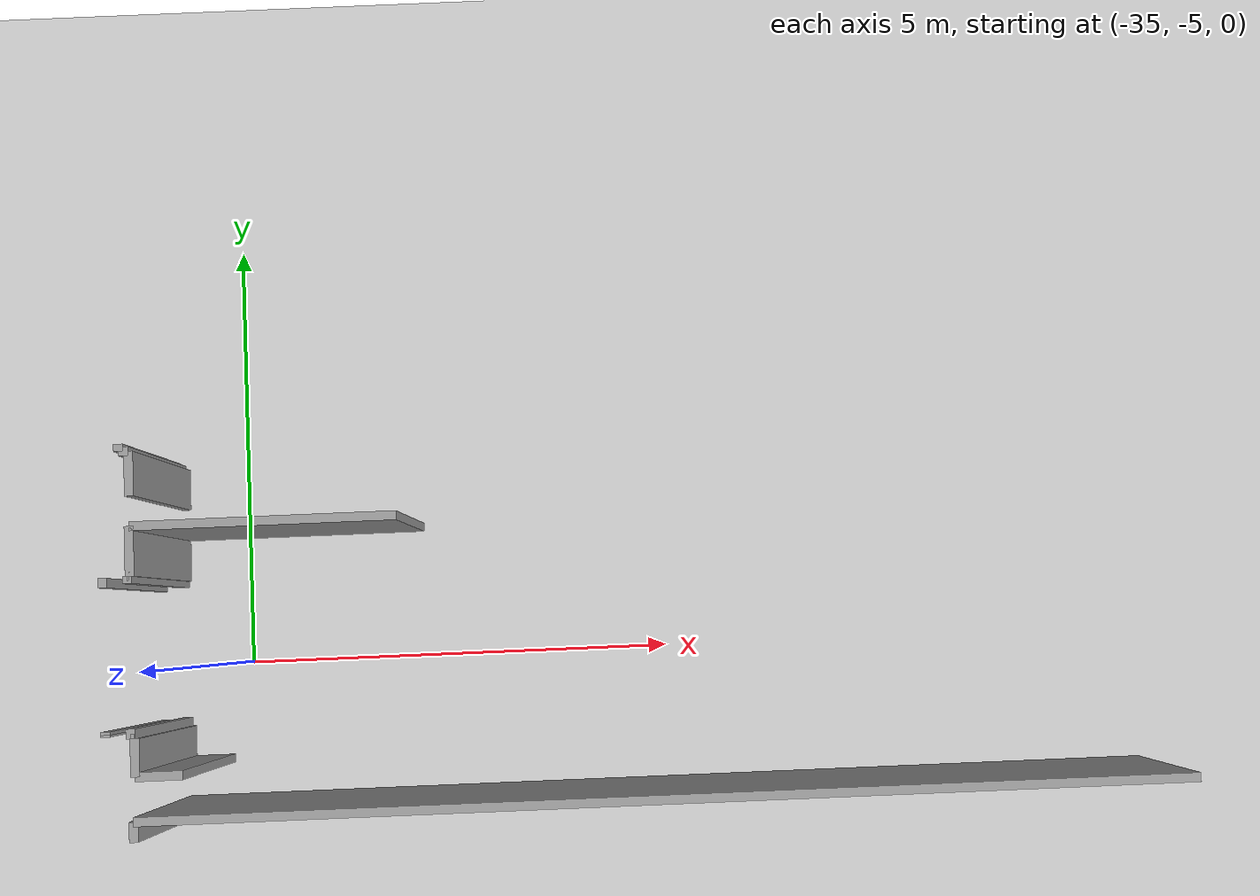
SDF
<sdf version="1.6">
 <world name="default">
  <model name="ground_plane">
   <static>1</static>
   <link name="link">
    <collision name="collision">
     <geometry><plane><normal>0 0 1</normal><size>100 100</size></plane></geometry>
     <surface><friction><ode><mu>100</mu><mu2>50</mu2></ode></friction></surface>
    </collision>
    <visual name="visual">
     <cast_shadows>0</cast_shadows>
     <geometry><plane><normal>0 0 1</normal><size>100 100</size></plane></geometry>
     <material>
      <script><uri>file://media/materials/scripts/gazebo.material</uri><name>Gazebo/Grey</name></script>
     </material>
    </visual>
   </link>
  </model>
  <model name="0510032258_A_40_1_105">
   <static>1</static>
   <link name="Wall_31">
    <collision name="Wall_31_Collision">
     <geometry><box><size>0.103923162923 0.1 2.5</size></box></geometry>
     <pose>0.0519615814615 0 1.25 0 0 0</pose>
    </collision>
    <visual name="Wall_31_Visual">
     <pose>0.0519615814615 0 1.25 0 0 0</pose>
     <geometry><box><size>0.103923162923 0.1 2.5</size></box></geometry>
     <material>
      <script><uri>file://media/materials/scripts/gazebo.material</uri><name>Gazebo/Grey</name></script>
      <ambient>1 1 1 1</ambient>
     </material>
    </visual>
    <pose>11.8170037605 -17.1565961988 0 0 0 -1.57079632679</pose>
   </link>
   <link name="Wall_32">
    <collision name="Wall_32_Collision">
     <geometry><box><size>0.0327777213131 0.1 2.5</size></box></geometry>
     <pose>0.0163888606566 0 1.25 0 0 0</pose>
    </collision>
    <visual name="Wall_32_Visual">
     <pose>0.0163888606566 0 1.25 0 0 0</pose>
     <geometry><box><size>0.0327777213131 0.1 2.5</size></box></geometry>
     <material>
      <script><uri>file://media/materials/scripts/gazebo.material</uri><name>Gazebo/Grey</name></script>
      <ambient>1 1 1 1</ambient>
     </material>
    </visual>
    <pose>11.8170037605 -18.8094572619 0 0 0 -1.57079632679</pose>
   </link>
   <link name="Wall_33">
    <collision name="Wall_33_Collision">
     <geometry><box><size>0.0233763593861 0.1 2.5</size></box></geometry>
     <pose>0.0116881796931 0 1.25 0 0 0</pose>
    </collision>
    <visual name="Wall_33_Visual">
     <pose>0.0116881796931 0 1.25 0 0 0</pose>
     <geometry><box><size>0.0233763593861 0.1 2.5</size></box></geometry>
     <material>
      <script><uri>file://media/materials/scripts/gazebo.material</uri><name>Gazebo/Grey</name></script>
      <ambient>1 1 1 1</ambient>
     </material>
    </visual>
    <pose>11.8170037605 -18.8422349832 0 0 0 -1.57079632679</pose>
   </link>
   <link name="Wall_44">
    <collision name="Wall_44_Collision">
     <geometry><box><size>0.490395365383 0.1 2.5</size></box></geometry>
     <pose>0.245197682691 0 1.25 0 0 0</pose>
    </collision>
    <visual name="Wall_44_Visual">
     <pose>0.245197682691 0 1.25 0 0 0</pose>
     <geometry><box><size>0.490395365383 0.1 2.5</size></box></geometry>
     <material>
      <script><uri>file://media/materials/scripts/gazebo.material</uri><name>Gazebo/Grey</name></script>
      <ambient>1 1 1 1</ambient>
     </material>
    </visual>
    <pose>12.1258512044 -16.2771877223 0 0 0 1.57079632679</pose>
   </link>
   <link name="Wall_45">
    <collision name="Wall_45_Collision">
     <geometry><box><size>0.109004980181 0.1 2.5</size></box></geometry>
     <pose>0.0545024900905 0 1.25 0 0 0</pose>
    </collision>
    <visual name="Wall_45_Visual">
     <pose>0.0545024900905 0 1.25 0 0 0</pose>
     <geometry><box><size>0.109004980181 0.1 2.5</size></box></geometry>
     <material>
      <script><uri>file://media/materials/scripts/gazebo.material</uri><name>Gazebo/Grey</name></script>
      <ambient>1 1 1 1</ambient>
     </material>
    </visual>
    <pose>12.1258512044 -15.7867923569 0 0 0 3.14159265359</pose>
   </link>
   <link name="Wall_46">
    <collision name="Wall_46_Collision">
     <geometry><box><size>0.08169021242 0.1 2.5</size></box></geometry>
     <pose>0.04084510621 0 1.25 0 0 0</pose>
    </collision>
    <visual name="Wall_46_Visual">
     <pose>0.04084510621 0 1.25 0 0 0</pose>
     <geometry><box><size>0.08169021242 0.1 2.5</size></box></geometry>
     <material>
      <script><uri>file://media/materials/scripts/gazebo.material</uri><name>Gazebo/Grey</name></script>
      <ambient>1 1 1 1</ambient>
     </material>
    </visual>
    <pose>12.0168462242 -15.7867923569 0 0 0 1.57079632679</pose>
   </link>
   <link name="Wall_53">
    <collision name="Wall_53_Collision">
     <geometry><box><size>0.511103770708 0.1 2.5</size></box></geometry>
     <pose>0.255551885354 0 1.25 0 0 0</pose>
    </collision>
    <visual name="Wall_53_Visual">
     <pose>0.255551885354 0 1.25 0 0 0</pose>
     <geometry><box><size>0.511103770708 0.1 2.5</size></box></geometry>
     <material>
      <script><uri>file://media/materials/scripts/gazebo.material</uri><name>Gazebo/Grey</name></script>
      <ambient>1 1 1 1</ambient>
     </material>
    </visual>
    <pose>12.6401311109 -19.3011230816 0 0 0 3.14159265359</pose>
   </link>
   <link name="Wall_54">
    <collision name="Wall_54_Collision">
     <geometry><box><size>0.409213334688 0.1 2.5</size></box></geometry>
     <pose>0.204606667344 0 1.25 0 0 0</pose>
    </collision>
    <visual name="Wall_54_Visual">
     <pose>0.204606667344 0 1.25 0 0 0</pose>
     <geometry><box><size>0.409213334688 0.1 2.5</size></box></geometry>
     <material>
      <script><uri>file://media/materials/scripts/gazebo.material</uri><name>Gazebo/Grey</name></script>
      <ambient>1 1 1 1</ambient>
     </material>
    </visual>
    <pose>12.1290273402 -19.3011230816 0 0 0 1.57079632679</pose>
   </link>
   <link name="Wall_55">
    <collision name="Wall_55_Collision">
     <geometry><box><size>0.0421790832402 0.1 2.5</size></box></geometry>
     <pose>0.0210895416201 0 1.25 0 0 0</pose>
    </collision>
    <visual name="Wall_55_Visual">
     <pose>0.0210895416201 0 1.25 0 0 0</pose>
     <geometry><box><size>0.0421790832402 0.1 2.5</size></box></geometry>
     <material>
      <script><uri>file://media/materials/scripts/gazebo.material</uri><name>Gazebo/Grey</name></script>
      <ambient>1 1 1 1</ambient>
     </material>
    </visual>
    <pose>12.1290273402 -18.8919097469 0 0 0 3.14159265359</pose>
   </link>
   <link name="Wall_56">
    <collision name="Wall_56_Collision">
     <geometry><box><size>0.104431344649 0.1 2.5</size></box></geometry>
     <pose>0.0522156723244 0 1.25 0 0 0</pose>
    </collision>
    <visual name="Wall_56_Visual">
     <pose>0.0522156723244 0 1.25 0 0 0</pose>
     <geometry><box><size>0.104431344649 0.1 2.5</size></box></geometry>
     <material>
      <script><uri>file://media/materials/scripts/gazebo.material</uri><name>Gazebo/Grey</name></script>
      <ambient>1 1 1 1</ambient>
     </material>
    </visual>
    <pose>12.0868482569 -18.8919097469 0 0 0 1.57079632679</pose>
   </link>
   <link name="Wall_57">
    <collision name="Wall_57_Collision">
     <geometry><box><size>0.0764813497307 0.1 2.5</size></box></geometry>
     <pose>0.0382406748653 0 1.25 0 0 0</pose>
    </collision>
    <visual name="Wall_57_Visual">
     <pose>0.0382406748653 0 1.25 0 0 0</pose>
     <geometry><box><size>0.0764813497307 0.1 2.5</size></box></geometry>
     <material>
      <script><uri>file://media/materials/scripts/gazebo.material</uri><name>Gazebo/Grey</name></script>
      <ambient>1 1 1 1</ambient>
     </material>
    </visual>
    <pose>12.0868482569 -17.222913914 0 0 0 1.57079632679</pose>
   </link>
   <link name="Wall_58">
    <collision name="Wall_58_Collision">
     <geometry><box><size>0.0274418131924 0.1 2.5</size></box></geometry>
     <pose>0.0137209065962 0 1.25 0 0 0</pose>
    </collision>
    <visual name="Wall_58_Visual">
     <pose>0.0137209065962 0 1.25 0 0 0</pose>
     <geometry><box><size>0.0274418131924 0.1 2.5</size></box></geometry>
     <material>
      <script><uri>file://media/materials/scripts/gazebo.material</uri><name>Gazebo/Grey</name></script>
      <ambient>1 1 1 1</ambient>
     </material>
    </visual>
    <pose>12.0868482569 -17.1464325643 0 0 0 0.0</pose>
   </link>
   <link name="Wall_59">
    <collision name="Wall_59_Collision">
     <geometry><box><size>0.54286512857 0.1 2.5</size></box></geometry>
     <pose>0.271432564285 0 1.25 0 0 0</pose>
    </collision>
    <visual name="Wall_59_Visual">
     <pose>0.271432564285 0 1.25 0 0 0</pose>
     <geometry><box><size>0.54286512857 0.1 2.5</size></box></geometry>
     <material>
      <script><uri>file://media/materials/scripts/gazebo.material</uri><name>Gazebo/Grey</name></script>
      <ambient>1 1 1 1</ambient>
     </material>
    </visual>
    <pose>12.1142900701 -17.1464325643 0 0 0 1.57079632679</pose>
   </link>
   <link name="Wall_60">
    <collision name="Wall_60_Collision">
     <geometry><box><size>2.90095538164 0.1 2.5</size></box></geometry>
     <pose>1.45047769082 0 1.25 0 0 0</pose>
    </collision>
    <visual name="Wall_60_Visual">
     <pose>1.45047769082 0 1.25 0 0 0</pose>
     <geometry><box><size>2.90095538164 0.1 2.5</size></box></geometry>
     <material>
      <script><uri>file://media/materials/scripts/gazebo.material</uri><name>Gazebo/Grey</name></script>
      <ambient>1 1 1 1</ambient>
     </material>
    </visual>
    <pose>12.1142900701 -16.6035674357 0 0 0 0.0</pose>
   </link>
   <link name="Wall_103">
    <collision name="Wall_103_Collision">
     <geometry><box><size>0.216231324322 0.1 2.5</size></box></geometry>
     <pose>0.108115662161 0 1.25 0 0 0</pose>
    </collision>
    <visual name="Wall_103_Visual">
     <pose>0.108115662161 0 1.25 0 0 0</pose>
     <geometry><box><size>0.216231324322 0.1 2.5</size></box></geometry>
     <material>
      <script><uri>file://media/materials/scripts/gazebo.material</uri><name>Gazebo/Grey</name></script>
      <ambient>1 1 1 1</ambient>
     </material>
    </visual>
    <pose>12.100696209 -19.9950452282 0 0 0 1.57079632679</pose>
   </link>
   <link name="Wall_104">
    <collision name="Wall_104_Collision">
     <geometry><box><size>11.4569570078 0.1 2.5</size></box></geometry>
     <pose>5.72847850391 0 1.25 0 0 0</pose>
    </collision>
    <visual name="Wall_104_Visual">
     <pose>5.72847850391 0 1.25 0 0 0</pose>
     <geometry><box><size>11.4569570078 0.1 2.5</size></box></geometry>
     <material>
      <script><uri>file://media/materials/scripts/gazebo.material</uri><name>Gazebo/Grey</name></script>
      <ambient>1 1 1 1</ambient>
     </material>
    </visual>
    <pose>12.100696209 -19.7788139039 0 0 0 0.0</pose>
   </link>
   <pose>-47.9 13.1512145543 0 0 0 0</pose>
  </model>
 </world>
</sdf>
